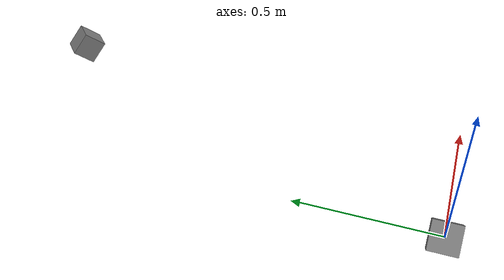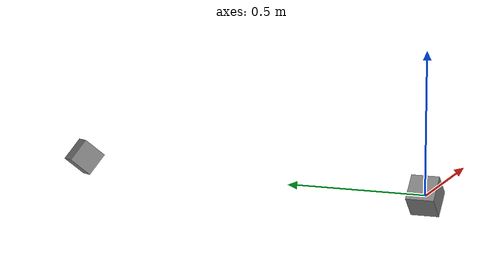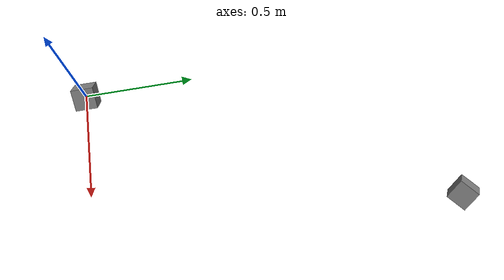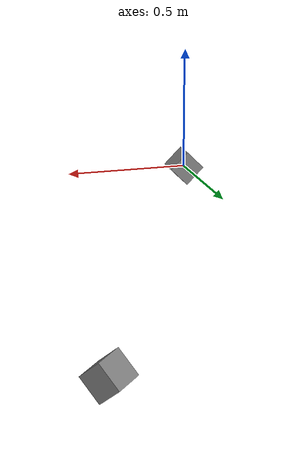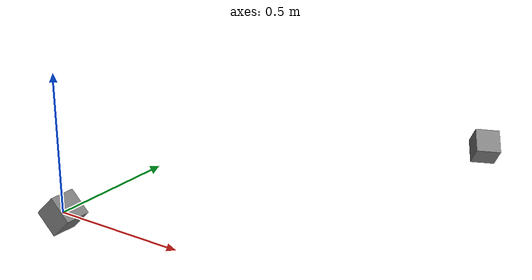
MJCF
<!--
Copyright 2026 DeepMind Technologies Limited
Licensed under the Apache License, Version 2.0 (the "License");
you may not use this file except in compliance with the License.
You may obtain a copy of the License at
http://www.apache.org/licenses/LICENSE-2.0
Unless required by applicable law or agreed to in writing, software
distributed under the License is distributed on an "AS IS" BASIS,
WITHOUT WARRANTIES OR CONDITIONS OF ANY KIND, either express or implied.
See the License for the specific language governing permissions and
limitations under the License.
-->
<mujoco>
  <option gravity="0 0 -1"/>

  <worldbody>
    <body name="body1" euler="0 45 0">
      <geom type="box" size="0.05 0.05 0.05"/>
      <site name="sensor" euler="0 0 90"/>
    </body>
    <body name="body2" pos="0 1 0" euler="30 30 30">
      <joint type="free"/>
      <inertial pos="1 0 0" mass="1" diaginertia="1 1 1"/>
      <geom type="box" size="0.05 0.05 0.05" pos="1 0 0"/>
    </body>
  </worldbody>

  <equality>
    <weld body1="body1" body2="body2" torquescale="4" solimp="0.999 0.999 0.001"/>
  </equality>

  <sensor>
    <force site="sensor" user="0 1.41421356237 1.41421356237"/>
    <torque site="sensor" user="-0.75 -1.166386108 1.166386108"/>
  </sensor>
</mujoco>
